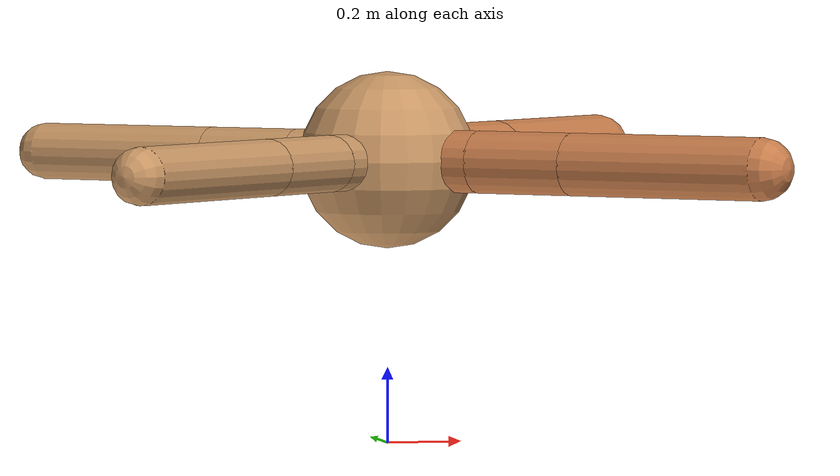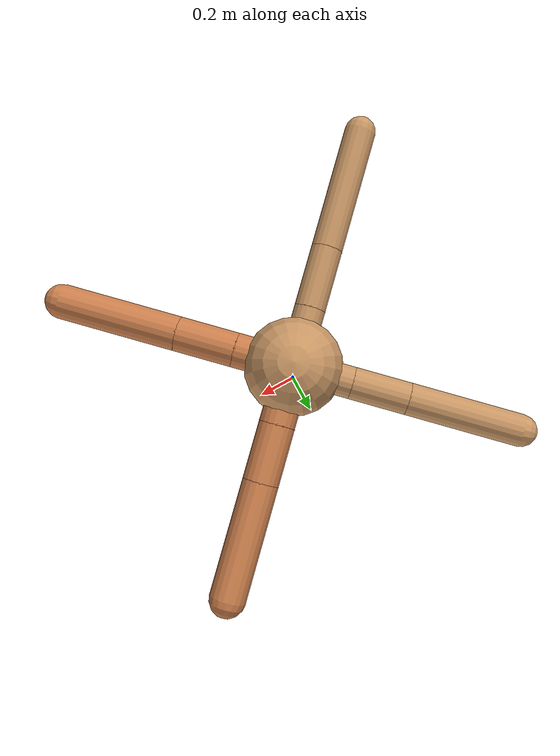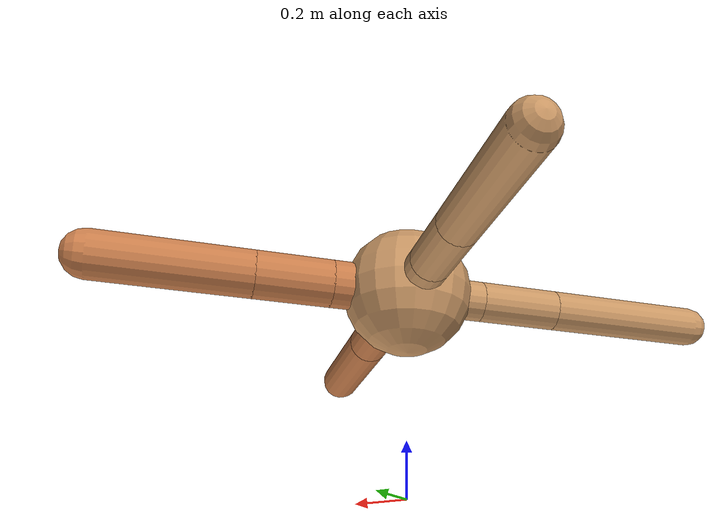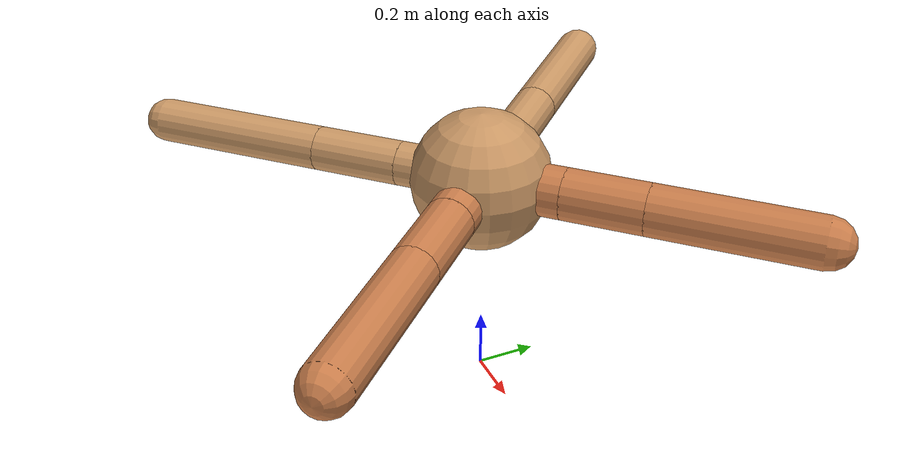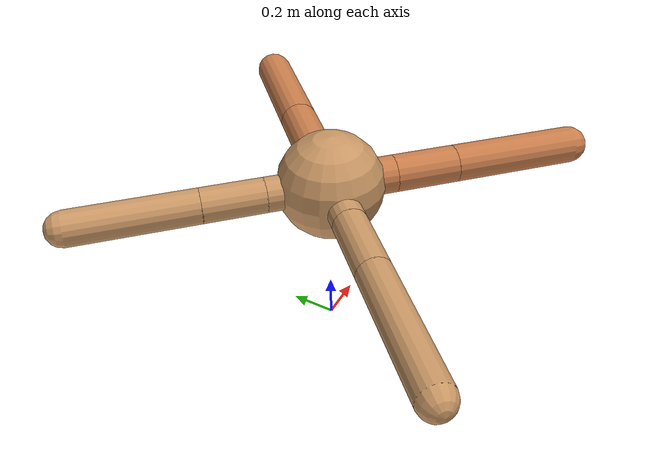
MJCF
<?xml version="1.0" ?>
<mujoco model="ant">

	<compiler angle="degree" coordinate="local" inertiafromgeom="true"/>

	<option integrator="RK4" timestep="0.01"/>

	<custom>

		<numeric data="0.0 0.0 0.55 1.0 0.0 0.0 0.0 0.0 1.0 0.0 -1.0 0.0 -1.0 0.0 1.0" name="init_qpos"/>

	</custom>

	<default>

		<joint armature="1" damping="1" limited="true"/>

		<geom conaffinity="0" condim="3" density="5.0" friction="1.5 0.1 0.1" margin="0.01" rgba="0.8 0.6 0.4 1"/>

	</default>

	<worldbody>

		<body name="torso" pos="0 0 0.75">

			<geom name="torso_geom" pos="0 0 0" size="0.23377289973032825" type="sphere"/>

			<!--joint armature="0" damping="0" limited="false" margin="0.01" name="root" pos="0 0 0" type="free"/-->

			<body name="front_left_leg" pos="0 0 0">

				<geom fromto="0 0 0 0.2 0.2 0" name="aux_1_geom" size="0.08592389952876468" type="capsule" rgba=".8 .5 .3 1"/>

				<body name="aux_1" pos="0.2 0.2 0">

					<joint axis="0 0 1" name="hip_1" pos="0.0 0.0 0.0" range="-40 40" type="hinge"/>

					<geom fromto="0 0 0 0.19335561656204273 0.19335561656204273 0" name="left_leg_geom" size="0.08592389952876468" type="capsule" rgba=".8 .5 .3 1"/>

					<body pos="0.19335561656204273 0.19335561656204273 0" name="front_left_foot">

						<joint axis="-1 1 0" name="ankle_1" pos="0.0 0.0 0.0" range="30 100" type="hinge"/>

						<geom fromto="0 0 0 0.38671123312408545 0.38671123312408545 0" name="left_ankle_geom" size="0.08592389952876468" type="capsule" rgba=".8 .5 .3 1"/>

					</body>

				</body>

			</body>

			<body name="front_right_leg" pos="0 0 0">

				<geom fromto="0 0 0 -0.2 0.2 0" name="aux_2_geom" size="0.07630641155667535" type="capsule"/>

				<body name="aux_2" pos="-0.2 0.2 0">

					<joint axis="0 0 1" name="hip_2" pos="0.0 0.0 0.0" range="-40 40" type="hinge"/>

					<geom fromto="0 0 0 -0.19043621818591144 0.19043621818591144 0" name="right_leg_geom" size="0.07630641155667535" type="capsule"/>

					<body pos="-0.19043621818591144 0.19043621818591144 0" name="front_right_foot">

						<joint axis="1 1 0" name="ankle_2" pos="0.0 0.0 0.0" range="-100 -30" type="hinge"/>

						<geom fromto="0 0 0 -0.3808724363718229 0.3808724363718229 0" name="right_ankle_geom" size="0.07630641155667535" type="capsule"/>

					</body>

				</body>

			</body>

			<body name="left_back_leg" pos="0 0 0">

				<geom fromto="0 0 0 -0.2 -0.2 0" name="aux_3_geom" size="0.07436517454748924" type="capsule"/>

				<body name="aux_3" pos="-0.2 -0.2 0">

					<joint axis="0 0 1" name="hip_3" pos="0.0 0.0 0.0" range="-40 40" type="hinge"/>

					<geom fromto="0 0 0 -0.21017129934978085 -0.21017129934978085 0" name="back_leg_geom" size="0.07436517454748924" type="capsule"/>

					<body pos="-0.21017129934978085 -0.21017129934978085 0" name="left_back_foot">

						<joint axis="-1 1 0" name="ankle_3" pos="0.0 0.0 0.0" range="-100 -30" type="hinge"/>

						<geom fromto="0 0 0 -0.4203425986995617 -0.4203425986995617 0" name="third_ankle_geom" size="0.07436517454748924" type="capsule"/>

					</body>

				</body>

			</body>

			<body name="right_back_leg" pos="0 0 0">

				<geom fromto="0 0 0 0.2 -0.2 0" name="aux_4_geom" size="0.08250982501905783" type="capsule" rgba=".8 .5 .3 1"/>

				<body name="aux_4" pos="0.2 -0.2 0">

					<joint axis="0 0 1" name="hip_4" pos="0.0 0.0 0.0" range="-40 40" type="hinge"/>

					<geom fromto="0 0 0 0.19900942311636338 -0.19900942311636338 0" name="rightback_leg_geom" size="0.08250982501905783" type="capsule" rgba=".8 .5 .3 1"/>

					<body pos="0.19900942311636338 -0.19900942311636338 0" name="right_back_foot">

						<joint axis="1 1 0" name="ankle_4" pos="0.0 0.0 0.0" range="30 100" type="hinge"/>

						<geom fromto="0 0 0 0.39801884623272676 -0.39801884623272676 0" name="fourth_ankle_geom" size="0.08250982501905783" type="capsule" rgba=".8 .5 .3 1"/>

					</body>

				</body>

			</body>

		</body>

	</worldbody>

	<actuator>

		<motor ctrllimited="true" ctrlrange="-1.0 1.0" joint="hip_4" gear="150"/>

		<motor ctrllimited="true" ctrlrange="-1.0 1.0" joint="ankle_4" gear="150"/>

		<motor ctrllimited="true" ctrlrange="-1.0 1.0" joint="hip_1" gear="150"/>

		<motor ctrllimited="true" ctrlrange="-1.0 1.0" joint="ankle_1" gear="150"/>

		<motor ctrllimited="true" ctrlrange="-1.0 1.0" joint="hip_2" gear="150"/>

		<motor ctrllimited="true" ctrlrange="-1.0 1.0" joint="ankle_2" gear="150"/>

		<motor ctrllimited="true" ctrlrange="-1.0 1.0" joint="hip_3" gear="150"/>

		<motor ctrllimited="true" ctrlrange="-1.0 1.0" joint="ankle_3" gear="150"/>

	</actuator>

</mujoco>
